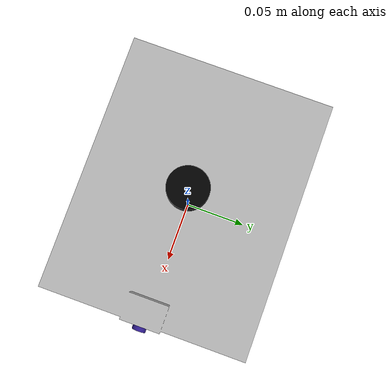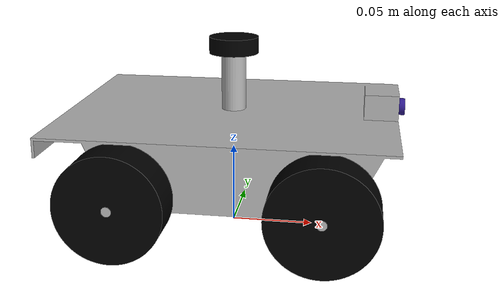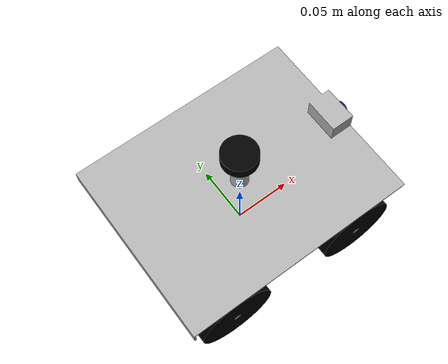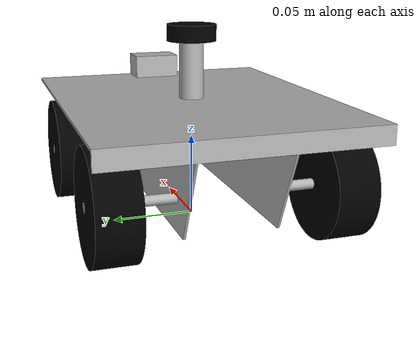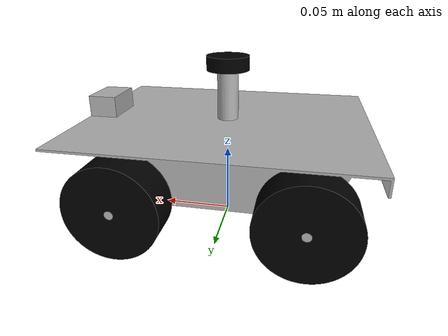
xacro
<?xml version="1.0" ?>
<robot name="robot" xmlns:xacro="http://www.ros.org/wiki/xacro">

<xacro:include filename="$(find robot_description)/models/urdf/materials.xacro" />
<xacro:include filename="$(find robot_description)/models/urdf/robot.gazebo" />

<link name="base_link">
  <inertial>
    <origin xyz="0.005833719964014702 0.0 0.06433887018887323" rpy="0 0 0"/>
    <mass value="0.8022984225987435"/>
    <inertia ixx="0.001476" iyy="0.003076" izz="0.003929" ixy="0.0" iyz="-0.0" ixz="-0.000103"/>
  </inertial>
  <visual>
    <origin xyz="0 0 0" rpy="0 0 0"/>
    <geometry>
      <mesh filename="file://$(find robot_description)/models/meshes/base_link.stl" scale="0.001 0.001 0.001"/>
    </geometry>
    <material name="silver"/>
  </visual>
  <collision>
    <origin xyz="0 0 0" rpy="0 0 0"/>
    <geometry>
      <mesh filename="file://$(find robot_description)/models/meshes/base_link.stl" scale="0.001 0.001 0.001"/>
    </geometry>
  </collision>
</link>

<link name="left_wheel_1">
  <inertial>
    <origin xyz="2.699229728619912e-15 -0.012500000000000011 2.8449465006019636e-16" rpy="0 0 0"/>
    <mass value="0.6456689578951122"/>
    <inertia ixx="0.000206" iyy="0.000344" izz="0.000206" ixy="-0.0" iyz="-0.0" ixz="0.0"/>
  </inertial>
  <visual>
    <origin xyz="-0.06 -0.078 -0.0325" rpy="0 0 0"/>
    <geometry>
      <mesh filename="file://$(find robot_description)/models/meshes/left_wheel_1.stl" scale="0.001 0.001 0.001"/>
    </geometry>
    <material name="black"/>
  </visual>
  <collision>
    <origin xyz="-0.06 -0.078 -0.0325" rpy="0 0 0"/>
    <geometry>
      <mesh filename="file://$(find robot_description)/models/meshes/left_wheel_1.stl" scale="0.001 0.001 0.001"/>
    </geometry>
  </collision>
</link>

<link name="left_wheel__1__1">
  <inertial>
    <origin xyz="2.67841304690819e-15 -0.012500000000000011 4.163336342344337e-17" rpy="0 0 0"/>
    <mass value="0.6456689578951122"/>
    <inertia ixx="0.000206" iyy="0.000344" izz="0.000206" ixy="0.0" iyz="0.0" ixz="-0.0"/>
  </inertial>
  <visual>
    <origin xyz="0.06 -0.078 -0.0325" rpy="0 0 0"/>
    <geometry>
      <mesh filename="file://$(find robot_description)/models/meshes/left_wheel__1__1.stl" scale="0.001 0.001 0.001"/>
    </geometry>
    <material name="black"/>
  </visual>
  <collision>
    <origin xyz="0.06 -0.078 -0.0325" rpy="0 0 0"/>
    <geometry>
      <mesh filename="file://$(find robot_description)/models/meshes/left_wheel__1__1.stl" scale="0.001 0.001 0.001"/>
    </geometry>
  </collision>
</link>

<link name="right_wheel_1">
  <inertial>
    <origin xyz="2.6853519408120974e-15 0.012499999999999997 2.1510571102112408e-16" rpy="0 0 0"/>
    <mass value="0.6456689578951125"/>
    <inertia ixx="0.000206" iyy="0.000344" izz="0.000206" ixy="0.0" iyz="-0.0" ixz="-0.0"/>
  </inertial>
  <visual>
    <origin xyz="-0.06 0.078 -0.0325" rpy="0 0 0"/>
    <geometry>
      <mesh filename="file://$(find robot_description)/models/meshes/right_wheel_1.stl" scale="0.001 0.001 0.001"/>
    </geometry>
    <material name="black"/>
  </visual>
  <collision>
    <origin xyz="-0.06 0.078 -0.0325" rpy="0 0 0"/>
    <geometry>
      <mesh filename="file://$(find robot_description)/models/meshes/right_wheel_1.stl" scale="0.001 0.001 0.001"/>
    </geometry>
  </collision>
</link>

<link name="right_wheel__1__1">
  <inertial>
    <origin xyz="2.7131075164277263e-15 0.012499999999999997 1.3877787807814457e-17" rpy="0 0 0"/>
    <mass value="0.6456689578951125"/>
    <inertia ixx="0.000206" iyy="0.000344" izz="0.000206" ixy="0.0" iyz="0.0" ixz="-0.0"/>
  </inertial>
  <visual>
    <origin xyz="0.06 0.078 -0.0325" rpy="0 0 0"/>
    <geometry>
      <mesh filename="file://$(find robot_description)/models/meshes/right_wheel__1__1.stl" scale="0.001 0.001 0.001"/>
    </geometry>
    <material name="black"/>
  </visual>
  <collision>
    <origin xyz="0.06 0.078 -0.0325" rpy="0 0 0"/>
    <geometry>
      <mesh filename="file://$(find robot_description)/models/meshes/right_wheel__1__1.stl" scale="0.001 0.001 0.001"/>
    </geometry>
  </collision>
</link>

<link name="camera_1">
  <inertial>
    <origin xyz="0.001999999999999974 0.0 -5.228456556594097e-13" rpy="0 0 0"/>
    <mass value="0.0024661502330680955"/>
    <inertia ixx="0.0" iyy="0.0" izz="0.0" ixy="0.0" iyz="0.0" ixz="-0.0"/>
  </inertial>
  <visual>
    <origin xyz="-0.1 -0.0 -0.07964" rpy="0 0 0"/>
    <geometry>
      <mesh filename="file://$(find robot_description)/models/meshes/camera_1.stl" scale="0.001 0.001 0.001"/>
    </geometry>
    <material name="purple"/>
  </visual>
  <collision>
    <origin xyz="-0.1 -0.0 -0.07964" rpy="0 0 0"/>
    <geometry>
      <mesh filename="file://$(find robot_description)/models/meshes/camera_1.stl" scale="0.001 0.001 0.001"/>
    </geometry>
  </collision>
</link>

<link name="lidar_1">
  <inertial>
    <origin xyz="0.0 -5.026061718855926e-18 0.0050000000000000044" rpy="0 0 0"/>
    <mass value="0.05548838024402973"/>
    <inertia ixx="4e-06" iyy="4e-06" izz="6e-06" ixy="-0.0" iyz="0.0" ixz="0.0"/>
  </inertial>
  <visual>
    <origin xyz="-0.0 -0.0 -0.1095" rpy="0 0 0"/>
    <geometry>
      <mesh filename="file://$(find robot_description)/models/meshes/lidar_1.stl" scale="0.001 0.001 0.001"/>
    </geometry>
    <material name="black"/>
  </visual>
  <collision>
    <origin xyz="-0.0 -0.0 -0.1095" rpy="0 0 0"/>
    <geometry>
      <mesh filename="file://$(find robot_description)/models/meshes/lidar_1.stl" scale="0.001 0.001 0.001"/>
    </geometry>
  </collision>
</link>

<joint name="Revolute 1" type="continuous">
  <origin xyz="0.06 0.078 0.0325" rpy="0 0 0"/>
  <parent link="base_link"/>
  <child link="left_wheel_1"/>
  <axis xyz="0.0 1.0 0.0"/>
  <limit upper="6.283185" lower="0.0" effort="100" velocity="100"/>
</joint>

<joint name="Revolute 2" type="continuous">
  <origin xyz="-0.06 0.078 0.0325" rpy="0 0 0"/>
  <parent link="base_link"/>
  <child link="left_wheel__1__1"/>
  <axis xyz="0.0 1.0 0.0"/>
  <limit upper="6.283185" lower="0.0" effort="100" velocity="100"/>
</joint>

<joint name="Revolute 3" type="continuous">
  <origin xyz="0.06 -0.078 0.0325" rpy="0 0 0"/>
  <parent link="base_link"/>
  <child link="right_wheel_1"/>
  <axis xyz="0.0 1.0 0.0"/>
  <limit upper="6.283185" lower="0.0" effort="100" velocity="100"/>
</joint>

<joint name="Revolute 4" type="continuous">
  <origin xyz="-0.06 -0.078 0.0325" rpy="0 0 0"/>
  <parent link="base_link"/>
  <child link="right_wheel__1__1"/>
  <axis xyz="0.0 -1.0 0.0"/>
  <limit upper="6.283185" lower="0.0" effort="100" velocity="100"/>
</joint>

<joint name="Rigid 5" type="fixed">
  <origin xyz="0.1 0.0 0.07964" rpy="0 0 0"/>
  <parent link="base_link"/>
  <child link="camera_1"/>
</joint>

<joint name="Revolute 6" type="fixed">
  <origin xyz="0.0 0.0 0.1095" rpy="0 0 0"/>
  <parent link="base_link"/>
  <child link="lidar_1"/>
  <axis xyz="0.0 0.0 1.0"/>
  <limit upper="6.283185" lower="0.0" effort="100" velocity="100"/>
</joint>

</robot>

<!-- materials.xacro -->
<robot name="robot" xmlns:xacro="http://www.ros.org/wiki/xacro" >

<material name="silver">
  <color rgba="0.700 0.700 0.700 1.000"/>
</material>

<material name="purple">
  <color rgba="0.19 0.11 0.57 1.000"/>
</material>

<material name="black">
  <color rgba="0.0 0.0 0.0 1.000"/>
</material>

</robot>

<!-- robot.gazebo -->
<robot name="robot" xmlns:xacro="http://www.ros.org/wiki/xacro" >

<xacro:property name="body_color" value="Gazebo/Grey" />
<xacro:property name="wheel_color" value="Gazebo/Black" />
<xacro:property name="lidar_color" value="Gazebo/Black" />
<xacro:property name="camera_color" value="Gazebo/SkyBlue" />

<gazebo>
  <plugin name="control" filename="libgazebo_ros_control.so"/>
</gazebo>

<gazebo reference="base_link">
  <material>${body_color}</material>
  <mu1>0.2</mu1>
  <mu2>0.2</mu2>
  <self_collide>true</self_collide>
  <gravity>true</gravity>
</gazebo>

<gazebo reference="left_wheel_1">
  <material>${wheel_color}</material>
  <mu1>0.2</mu1>
  <mu2>0.2</mu2>
  <self_collide>true</self_collide>
</gazebo>

<gazebo reference="left_wheel__1__1">
  <material>${wheel_color}</material>
  <mu1>0.2</mu1>
  <mu2>0.2</mu2>
  <self_collide>true</self_collide>
</gazebo>

<gazebo reference="right_wheel_1">
  <material>${wheel_color}</material>
  <mu1>0.2</mu1>
  <mu2>0.2</mu2>
  <self_collide>true</self_collide>
</gazebo>

<gazebo reference="right_wheel__1__1">
  <material>${wheel_color}</material>
  <mu1>0.2</mu1>
  <mu2>0.2</mu2>
  <self_collide>true</self_collide>
</gazebo>

<gazebo reference="camera_1">
  <material>${camera_color}</material>
  <mu1>0.2</mu1>
  <mu2>0.2</mu2>
  <self_collide>true</self_collide>
	<sensor type="camera" name="camera_sensor">
    <pose>0 0 0 0 0 0</pose>
    <visualize>true</visualize>
    <update_rate>30</update_rate>
    <camera>
      <horizontal_fov>1.047</horizontal_fov>
      <image>
        <width>640</width>
        <height>480</height>
        <format>R8G8B8</format>
      </image>
      <clip>
        <near>0.1</near>
        <far>100</far>
      </clip>
    </camera>
    <plugin name="gazebo_ros_camera" filename="libgazebo_ros_camera.so">
      <ros>
        <namespace></namespace>
        <remapping>image_raw:=/camera/image_raw</remapping>
      </ros>
      <frameName>camera_link</frameName>
    </plugin>
  </sensor>
</gazebo>

<gazebo reference="lidar_1">
  <material>${lidar_color}</material>
  <mu1>0.2</mu1>
  <mu2>0.2</mu2>
  <self_collide>true</self_collide>
		<sensor name="ydlidar" type="ray">
			<always_on>true</always_on>
			<visualize>false</visualize>
			<update_rate>10</update_rate>
			<ray>
			<scan>
				<horizontal>
				<samples>720</samples>
				<resolution>1.000000</resolution>
				<min_angle>-3.14</min_angle>
				<max_angle>3.14</max_angle>
				</horizontal>
			</scan>
			<range>
				<min>0.05</min>
				<max>20.0</max>
				<resolution>0.015000</resolution>
			</range>
			<noise>
				<type>gaussian</type>
				<mean>0.0</mean>
				<stddev>0.01</stddev>
			</noise>
			</ray>
			<plugin name="scan" filename="libgazebo_ros_ray_sensor.so">
			<ros>
				<remapping>~/out:=scan</remapping>
			</ros>
			<output_type>sensor_msgs/LaserScan</output_type>
			<frame_name>lidar_1</frame_name>
			</plugin>
		</sensor>
</gazebo>

<!-- Differential Drive Plugin -->
<gazebo>
	<plugin name="wheel_drive_controller" filename="libgazebo_ros_diff_drive.so">

		<!-- wheels -->
		<num_wheel_pairs>1</num_wheel_pairs>
		<left_joint>Revolute 1</left_joint>
		<right_joint>Revolute 3</right_joint>

		<!-- kinematics -->
		<wheel_separation>0.12</wheel_separation>
		<wheel_diameter>0.08</wheel_diameter>
		<max_wheel_torque>20.0</max_wheel_torque>
		<max_wheel_acceleration>1.0</max_wheel_acceleration>

		<!-- odometry  -->
		<odometry_source>1</odometry_source>
		<odometry_frame>odom</odometry_frame>
		<robot_base_frame>base_link</robot_base_frame>

		<!-- topic & re remappings -->
		<ros>
			<namespace>/</namespace>
			<remapping>/cmd_vel:=cmd_vel</remapping>
			<remapping>/odom:=odom</remapping>
		</ros>

		<publish_odom>true</publish_odom>
		<publish_odom_tf>true</publish_odom_tf>
		<publish_wheel_tf>false</publish_wheel_tf>
		<update_rate>100.0</update_rate>
	</plugin>
</gazebo>

</robot>
